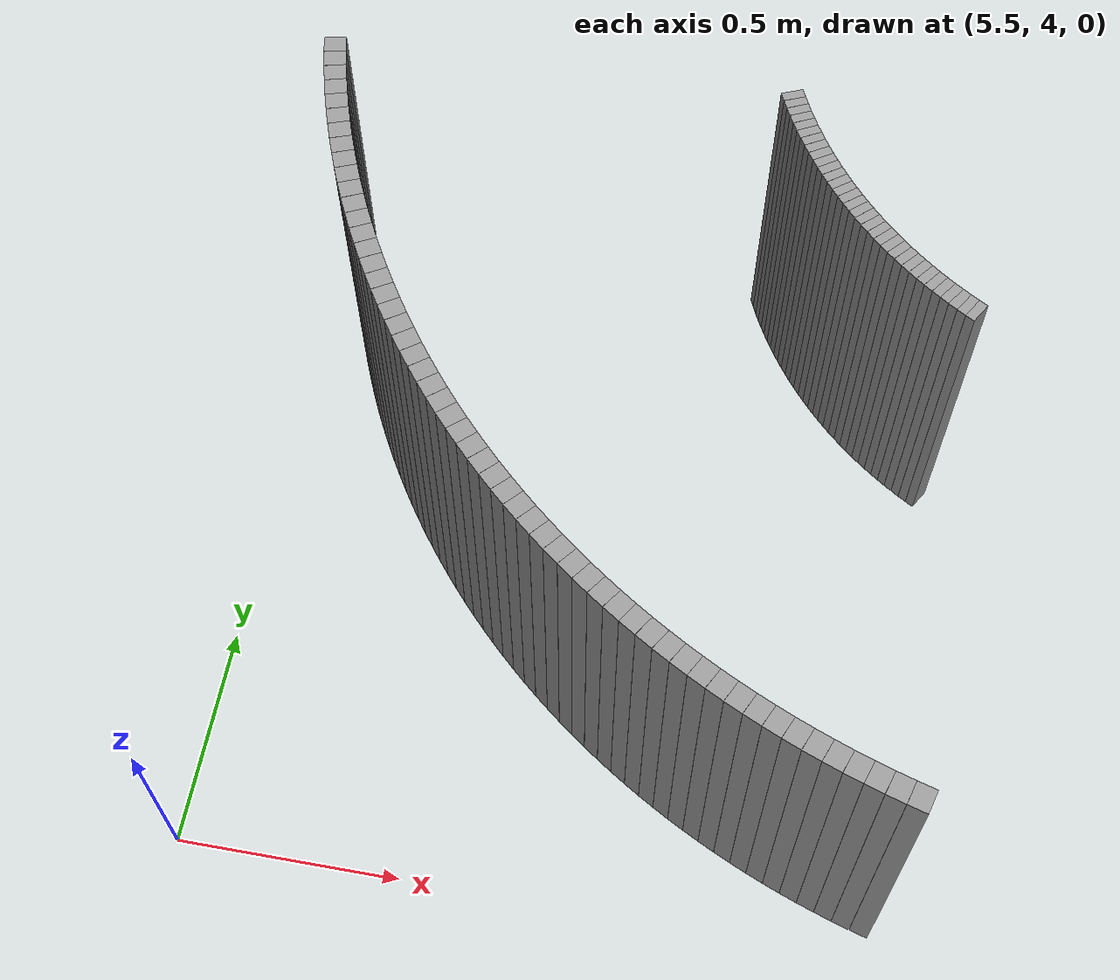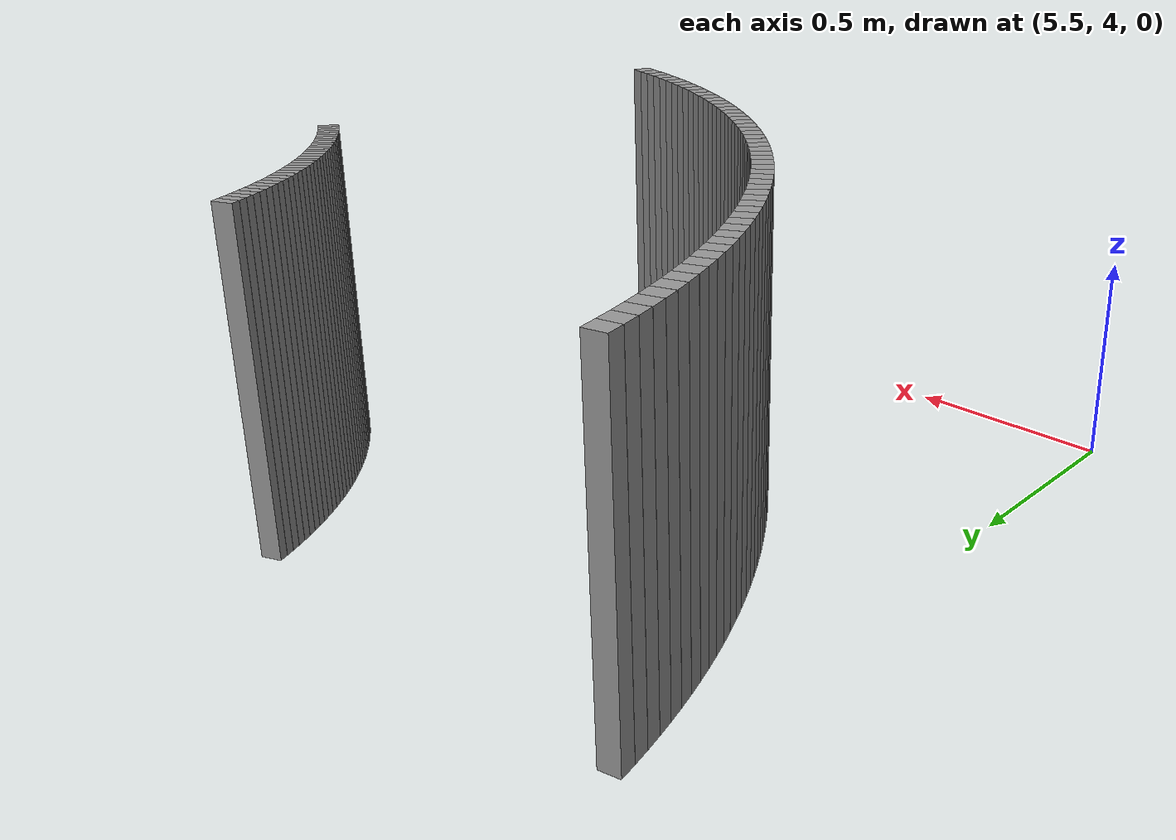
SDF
<sdf version="1.6">
 <model name="path_walls">
  <static>true</static>
  <model name="wall_left_374">
   <static>true</static>
   <pose>6.584013524048298 5.658781898348471 0.40 0 0 -1.1731263706443242</pose>
   <link name="wall_link">
    <visual name="wall_visual">
     <geometry><box><size>0.02137440799885274 0.05 0.8</size></box></geometry>
     <material><ambient>0.3 0.3 0.3 1</ambient><diffuse>0.6 0.6 0.6 1</diffuse></material>
    </visual>
    <collision name="wall_collision">
     <geometry><box><size>0.02137440799885274 0.05 0.8</size></box></geometry>
    </collision>
   </link>
  </model>
  <model name="wall_left_375">
   <static>true</static>
   <pose>6.592486301925344 5.639159661013978 0.40 0 0 -1.153242872836709</pose>
   <link name="wall_link">
    <visual name="wall_visual">
     <geometry><box><size>0.021374407998836515 0.05 0.8</size></box></geometry>
     <material><ambient>0.3 0.3 0.3 1</ambient><diffuse>0.6 0.6 0.6 1</diffuse></material>
    </visual>
    <collision name="wall_collision">
     <geometry><box><size>0.021374407998836515 0.05 0.8</size></box></geometry>
    </collision>
   </link>
  </model>
  <model name="wall_left_376">
   <static>true</static>
   <pose>6.601347537991533 5.61970975977145 0.40 0 0 -1.1333593750292177</pose>
   <link name="wall_link">
    <visual name="wall_visual">
     <geometry><box><size>0.021374407998847888 0.05 0.8</size></box></geometry>
     <material><ambient>0.3 0.3 0.3 1</ambient><diffuse>0.6 0.6 0.6 1</diffuse></material>
    </visual>
    <collision name="wall_collision">
     <geometry><box><size>0.021374407998847888 0.05 0.8</size></box></geometry>
    </collision>
   </link>
  </model>
  <model name="wall_left_377">
   <static>true</static>
   <pose>6.610593729041724 5.60043988395378 0.40 0 0 -1.1134758772217077</pose>
   <link name="wall_link">
    <visual name="wall_visual">
     <geometry><box><size>0.02137440799884737 0.05 0.8</size></box></geometry>
     <material><ambient>0.3 0.3 0.3 1</ambient><diffuse>0.6 0.6 0.6 1</diffuse></material>
    </visual>
    <collision name="wall_collision">
     <geometry><box><size>0.02137440799884737 0.05 0.8</size></box></geometry>
    </collision>
   </link>
  </model>
  <model name="wall_left_378">
   <static>true</static>
   <pose>6.620221219682493 5.581357651722539 0.40 0 0 -1.093592379414218</pose>
   <link name="wall_link">
    <visual name="wall_visual">
     <geometry><box><size>0.021374407998852027 0.05 0.8</size></box></geometry>
     <material><ambient>0.3 0.3 0.3 1</ambient><diffuse>0.6 0.6 0.6 1</diffuse></material>
    </visual>
    <collision name="wall_collision">
     <geometry><box><size>0.021374407998852027 0.05 0.8</size></box></geometry>
    </collision>
   </link>
  </model>
  <model name="wall_left_379">
   <static>true</static>
   <pose>6.630226203777265 5.562470607056193 0.40 0 0 -1.0737088816065785</pose>
   <link name="wall_link">
    <visual name="wall_visual">
     <geometry><box><size>0.0213744079988493 0.05 0.8</size></box></geometry>
     <material><ambient>0.3 0.3 0.3 1</ambient><diffuse>0.6 0.6 0.6 1</diffuse></material>
    </visual>
    <collision name="wall_collision">
     <geometry><box><size>0.0213744079988493 0.05 0.8</size></box></geometry>
    </collision>
   </link>
  </model>
  <model name="wall_left_380">
   <static>true</static>
   <pose>6.640604725951022 5.543786216767673 0.40 0 0 -1.0538253837991243</pose>
   <link name="wall_link">
    <visual name="wall_visual">
     <geometry><box><size>0.02137440799883933 0.05 0.8</size></box></geometry>
     <material><ambient>0.3 0.3 0.3 1</ambient><diffuse>0.6 0.6 0.6 1</diffuse></material>
    </visual>
    <collision name="wall_collision">
     <geometry><box><size>0.02137440799883933 0.05 0.8</size></box></geometry>
    </collision>
   </link>
  </model>
  <model name="wall_left_381">
   <static>true</static>
   <pose>6.651352683154039 5.52531186755242 0.40 0 0 -1.033941885991578</pose>
   <link name="wall_link">
    <visual name="wall_visual">
     <geometry><box><size>0.021374407998854834 0.05 0.8</size></box></geometry>
     <material><ambient>0.3 0.3 0.3 1</ambient><diffuse>0.6 0.6 0.6 1</diffuse></material>
    </visual>
    <collision name="wall_collision">
     <geometry><box><size>0.021374407998854834 0.05 0.8</size></box></geometry>
    </collision>
   </link>
  </model>
  <model name="wall_left_382">
   <static>true</static>
   <pose>6.662465826283972 5.507054863068153 0.40 0 0 -1.0140583881840293</pose>
   <link name="wall_link">
    <visual name="wall_visual">
     <geometry><box><size>0.0213744079988352 0.05 0.8</size></box></geometry>
     <material><ambient>0.3 0.3 0.3 1</ambient><diffuse>0.6 0.6 0.6 1</diffuse></material>
    </visual>
    <collision name="wall_collision">
     <geometry><box><size>0.0213744079988352 0.05 0.8</size></box></geometry>
    </collision>
   </link>
  </model>
  <model name="wall_left_383">
   <static>true</static>
   <pose>6.6739397618657055 5.489022421047419 0.40 0 0 -0.9941748903765355</pose>
   <link name="wall_link">
    <visual name="wall_visual">
     <geometry><box><size>0.021374407998852724 0.05 0.8</size></box></geometry>
     <material><ambient>0.3 0.3 0.3 1</ambient><diffuse>0.6 0.6 0.6 1</diffuse></material>
    </visual>
    <collision name="wall_collision">
     <geometry><box><size>0.021374407998852724 0.05 0.8</size></box></geometry>
    </collision>
   </link>
  </model>
  <model name="wall_left_384">
   <static>true</static>
   <pose>6.685769953788271 5.471221670444134 0.40 0 0 -0.974291392569001</pose>
   <link name="wall_link">
    <visual name="wall_visual">
     <geometry><box><size>0.021374407998845414 0.05 0.8</size></box></geometry>
     <material><ambient>0.3 0.3 0.3 1</ambient><diffuse>0.6 0.6 0.6 1</diffuse></material>
    </visual>
    <collision name="wall_collision">
     <geometry><box><size>0.021374407998845414 0.05 0.8</size></box></geometry>
    </collision>
   </link>
  </model>
  <model name="wall_left_385">
   <static>true</static>
   <pose>6.69795172509815 5.453659648615236 0.40 0 0 -0.954407894761421</pose>
   <link name="wall_link">
    <visual name="wall_visual">
     <geometry><box><size>0.02137440799884164 0.05 0.8</size></box></geometry>
     <material><ambient>0.3 0.3 0.3 1</ambient><diffuse>0.6 0.6 0.6 1</diffuse></material>
    </visual>
    <collision name="wall_collision">
     <geometry><box><size>0.02137440799884164 0.05 0.8</size></box></geometry>
    </collision>
   </link>
  </model>
  <model name="wall_left_386">
   <static>true</static>
   <pose>6.710480259848279 5.436343298538502 0.40 0 0 -0.9345243969539239</pose>
   <link name="wall_link">
    <visual name="wall_visual">
     <geometry><box><size>0.021374407998861096 0.05 0.8</size></box></geometry>
     <material><ambient>0.3 0.3 0.3 1</ambient><diffuse>0.6 0.6 0.6 1</diffuse></material>
    </visual>
    <collision name="wall_collision">
     <geometry><box><size>0.021374407998861096 0.05 0.8</size></box></geometry>
    </collision>
   </link>
  </model>
  <model name="wall_left_387">
   <static>true</static>
   <pose>6.723350605001961 5.41927946606774 0.40 0 0 -0.9146408991464429</pose>
   <link name="wall_link">
    <visual name="wall_visual">
     <geometry><box><size>0.021374407998839256 0.05 0.8</size></box></geometry>
     <material><ambient>0.3 0.3 0.3 1</ambient><diffuse>0.6 0.6 0.6 1</diffuse></material>
    </visual>
    <collision name="wall_collision">
     <geometry><box><size>0.021374407998839256 0.05 0.8</size></box></geometry>
    </collision>
   </link>
  </model>
  <model name="wall_left_388">
   <static>true</static>
   <pose>6.736557672391022 5.402474897226332 0.40 0 0 -0.8947574013388512</pose>
   <link name="wall_link">
    <visual name="wall_visual">
     <geometry><box><size>0.021374407998845404 0.05 0.8</size></box></geometry>
     <material><ambient>0.3 0.3 0.3 1</ambient><diffuse>0.6 0.6 0.6 1</diffuse></material>
    </visual>
    <collision name="wall_collision">
     <geometry><box><size>0.021374407998845404 0.05 0.8</size></box></geometry>
    </collision>
   </link>
  </model>
  <model name="wall_left_389">
   <static>true</static>
   <pose>6.750096240727374 5.385936235540241 0.40 0 0 -0.8748739035313212</pose>
   <link name="wall_link">
    <visual name="wall_visual">
     <geometry><box><size>0.02137440799884972 0.05 0.8</size></box></geometry>
     <material><ambient>0.3 0.3 0.3 1</ambient><diffuse>0.6 0.6 0.6 1</diffuse></material>
    </visual>
    <collision name="wall_collision">
     <geometry><box><size>0.02137440799884972 0.05 0.8</size></box></geometry>
    </collision>
   </link>
  </model>
  <model name="wall_left_390">
   <static>true</static>
   <pose>6.763960957667182 5.369670019411588 0.40 0 0 -0.8549904057238426</pose>
   <link name="wall_link">
    <visual name="wall_visual">
     <geometry><box><size>0.0213744079988471 0.05 0.8</size></box></geometry>
     <material><ambient>0.3 0.3 0.3 1</ambient><diffuse>0.6 0.6 0.6 1</diffuse></material>
    </visual>
    <collision name="wall_collision">
     <geometry><box><size>0.0213744079988471 0.05 0.8</size></box></geometry>
    </collision>
   </link>
  </model>
  <model name="wall_left_391">
   <static>true</static>
   <pose>6.77814634192687 5.353682679533742 0.40 0 0 -0.8351069079162586</pose>
   <link name="wall_link">
    <visual name="wall_visual">
     <geometry><box><size>0.02137440799883505 0.05 0.8</size></box></geometry>
     <material><ambient>0.3 0.3 0.3 1</ambient><diffuse>0.6 0.6 0.6 1</diffuse></material>
    </visual>
    <collision name="wall_collision">
     <geometry><box><size>0.02137440799883505 0.05 0.8</size></box></geometry>
    </collision>
   </link>
  </model>
  <model name="wall_left_392">
   <static>true</static>
   <pose>6.79264678545011 5.337980536348997 0.40 0 0 -0.8152234101087368</pose>
   <link name="wall_link">
    <visual name="wall_visual">
     <geometry><box><size>0.02137440799885385 0.05 0.8</size></box></geometry>
     <material><ambient>0.3 0.3 0.3 1</ambient><diffuse>0.6 0.6 0.6 1</diffuse></material>
    </visual>
    <collision name="wall_collision">
     <geometry><box><size>0.02137440799885385 0.05 0.8</size></box></geometry>
    </collision>
   </link>
  </model>
  <model name="wall_left_393">
   <static>true</static>
   <pose>6.807456555624892 5.322569797549856 0.40 0 0 -0.7953399123011984</pose>
   <link name="wall_link">
    <visual name="wall_visual">
     <geometry><box><size>0.02137440799884804 0.05 0.8</size></box></geometry>
     <material><ambient>0.3 0.3 0.3 1</ambient><diffuse>0.6 0.6 0.6 1</diffuse></material>
    </visual>
    <collision name="wall_collision">
     <geometry><box><size>0.02137440799884804 0.05 0.8</size></box></geometry>
    </collision>
   </link>
  </model>
  <model name="wall_left_394">
   <static>true</static>
   <pose>6.822569797549857 5.307456555624891 0.40 0 0 -0.7754564144936977</pose>
   <link name="wall_link">
    <visual name="wall_visual">
     <geometry><box><size>0.021374407998846785 0.05 0.8</size></box></geometry>
     <material><ambient>0.3 0.3 0.3 1</ambient><diffuse>0.6 0.6 0.6 1</diffuse></material>
    </visual>
    <collision name="wall_collision">
     <geometry><box><size>0.021374407998846785 0.05 0.8</size></box></geometry>
    </collision>
   </link>
  </model>
  <model name="wall_left_395">
   <static>true</static>
   <pose>6.837980536348997 5.29264678545011 0.40 0 0 -0.7555729166861598</pose>
   <link name="wall_link">
    <visual name="wall_visual">
     <geometry><box><size>0.02137440799885385 0.05 0.8</size></box></geometry>
     <material><ambient>0.3 0.3 0.3 1</ambient><diffuse>0.6 0.6 0.6 1</diffuse></material>
    </visual>
    <collision name="wall_collision">
     <geometry><box><size>0.02137440799885385 0.05 0.8</size></box></geometry>
    </collision>
   </link>
  </model>
  <model name="wall_left_396">
   <static>true</static>
   <pose>6.853682679533742 5.27814634192687 0.40 0 0 -0.735689418878638</pose>
   <link name="wall_link">
    <visual name="wall_visual">
     <geometry><box><size>0.02137440799883505 0.05 0.8</size></box></geometry>
     <material><ambient>0.3 0.3 0.3 1</ambient><diffuse>0.6 0.6 0.6 1</diffuse></material>
    </visual>
    <collision name="wall_collision">
     <geometry><box><size>0.02137440799883505 0.05 0.8</size></box></geometry>
    </collision>
   </link>
  </model>
  <model name="wall_left_397">
   <static>true</static>
   <pose>6.869670019411588 5.263960957667182 0.40 0 0 -0.7158059210710622</pose>
   <link name="wall_link">
    <visual name="wall_visual">
     <geometry><box><size>0.02137440799884961 0.05 0.8</size></box></geometry>
     <material><ambient>0.3 0.3 0.3 1</ambient><diffuse>0.6 0.6 0.6 1</diffuse></material>
    </visual>
    <collision name="wall_collision">
     <geometry><box><size>0.02137440799884961 0.05 0.8</size></box></geometry>
    </collision>
   </link>
  </model>
  <model name="wall_left_398">
   <static>true</static>
   <pose>6.8859362355402425 5.250096240727373 0.40 0 0 -0.6959224232635968</pose>
   <link name="wall_link">
    <visual name="wall_visual">
     <geometry><box><size>0.021374407998847787 0.05 0.8</size></box></geometry>
     <material><ambient>0.3 0.3 0.3 1</ambient><diffuse>0.6 0.6 0.6 1</diffuse></material>
    </visual>
    <collision name="wall_collision">
     <geometry><box><size>0.021374407998847787 0.05 0.8</size></box></geometry>
    </collision>
   </link>
  </model>
  <model name="wall_left_399">
   <static>true</static>
   <pose>6.90247489722633 5.236557672391022 0.40 0 0 -0.6760389254560002</pose>
   <link name="wall_link">
    <visual name="wall_visual">
     <geometry><box><size>0.021374407998842347 0.05 0.8</size></box></geometry>
     <material><ambient>0.3 0.3 0.3 1</ambient><diffuse>0.6 0.6 0.6 1</diffuse></material>
    </visual>
    <collision name="wall_collision">
     <geometry><box><size>0.021374407998842347 0.05 0.8</size></box></geometry>
    </collision>
   </link>
  </model>
  <model name="wall_left_400">
   <static>true</static>
   <pose>6.919279466067744 5.223350605001958 0.40 0 0 -0.6561554276485118</pose>
   <link name="wall_link">
    <visual name="wall_visual">
     <geometry><box><size>0.021374407998853658 0.05 0.8</size></box></geometry>
     <material><ambient>0.3 0.3 0.3 1</ambient><diffuse>0.6 0.6 0.6 1</diffuse></material>
    </visual>
    <collision name="wall_collision">
     <geometry><box><size>0.021374407998853658 0.05 0.8</size></box></geometry>
    </collision>
   </link>
  </model>
  <model name="wall_left_401">
   <static>true</static>
   <pose>6.936343298538507 5.210480259848275 0.40 0 0 -0.636271929840919</pose>
   <link name="wall_link">
    <visual name="wall_visual">
     <geometry><box><size>0.0213744079988492 0.05 0.8</size></box></geometry>
     <material><ambient>0.3 0.3 0.3 1</ambient><diffuse>0.6 0.6 0.6 1</diffuse></material>
    </visual>
    <collision name="wall_collision">
     <geometry><box><size>0.0213744079988492 0.05 0.8</size></box></geometry>
    </collision>
   </link>
  </model>
  <model name="wall_left_402">
   <static>true</static>
   <pose>6.953659648615233 5.197951725098153 0.40 0 0 -0.6163884320334982</pose>
   <link name="wall_link">
    <visual name="wall_visual">
     <geometry><box><size>0.021374407998833278 0.05 0.8</size></box></geometry>
     <material><ambient>0.3 0.3 0.3 1</ambient><diffuse>0.6 0.6 0.6 1</diffuse></material>
    </visual>
    <collision name="wall_collision">
     <geometry><box><size>0.021374407998833278 0.05 0.8</size></box></geometry>
    </collision>
   </link>
  </model>
  <model name="wall_left_403">
   <static>true</static>
   <pose>6.9712216704441285 5.185769953788274 0.40 0 0 -0.5965049342259398</pose>
   <link name="wall_link">
    <visual name="wall_visual">
     <geometry><box><size>0.021374407998850348 0.05 0.8</size></box></geometry>
     <material><ambient>0.3 0.3 0.3 1</ambient><diffuse>0.6 0.6 0.6 1</diffuse></material>
    </visual>
    <collision name="wall_collision">
     <geometry><box><size>0.021374407998850348 0.05 0.8</size></box></geometry>
    </collision>
   </link>
  </model>
  <model name="wall_left_404">
   <static>true</static>
   <pose>6.989022421047417 5.1739397618657055 0.40 0 0 -0.576621436418328</pose>
   <link name="wall_link">
    <visual name="wall_visual">
     <geometry><box><size>0.02137440799885544 0.05 0.8</size></box></geometry>
     <material><ambient>0.3 0.3 0.3 1</ambient><diffuse>0.6 0.6 0.6 1</diffuse></material>
    </visual>
    <collision name="wall_collision">
     <geometry><box><size>0.02137440799885544 0.05 0.8</size></box></geometry>
    </collision>
   </link>
  </model>
  <model name="wall_left_405">
   <static>true</static>
   <pose>7.007054863068152 5.162465826283972 0.40 0 0 -0.5567379386108453</pose>
   <link name="wall_link">
    <visual name="wall_visual">
     <geometry><box><size>0.021374407998835956 0.05 0.8</size></box></geometry>
     <material><ambient>0.3 0.3 0.3 1</ambient><diffuse>0.6 0.6 0.6 1</diffuse></material>
    </visual>
    <collision name="wall_collision">
     <geometry><box><size>0.021374407998835956 0.05 0.8</size></box></geometry>
    </collision>
   </link>
  </model>
  <model name="wall_left_406">
   <static>true</static>
   <pose>7.025311867552423 5.1513526831540375 0.40 0 0 -0.536854440803355</pose>
   <link name="wall_link">
    <visual name="wall_visual">
     <geometry><box><size>0.021374407998860465 0.05 0.8</size></box></geometry>
     <material><ambient>0.3 0.3 0.3 1</ambient><diffuse>0.6 0.6 0.6 1</diffuse></material>
    </visual>
    <collision name="wall_collision">
     <geometry><box><size>0.021374407998860465 0.05 0.8</size></box></geometry>
    </collision>
   </link>
  </model>
  <model name="wall_right_365">
   <static>true</static>
   <pose>5.549612086947805 5.624869059963652 0.40 0 0 -1.3520778509120803</pose>
   <link name="wall_link">
    <visual name="wall_visual">
     <geometry><box><size>0.041257578265902574 0.05 0.8</size></box></geometry>
     <material><ambient>0.3 0.3 0.3 1</ambient><diffuse>0.6 0.6 0.6 1</diffuse></material>
    </visual>
    <collision name="wall_collision">
     <geometry><box><size>0.041257578265902574 0.05 0.8</size></box></geometry>
    </collision>
   </link>
  </model>
  <model name="wall_right_366">
   <static>true</static>
   <pose>5.558963596611791 5.584687362694266 0.40 0 0 -1.3321943531045355</pose>
   <link name="wall_link">
    <visual name="wall_visual">
     <geometry><box><size>0.0412575782659131 0.05 0.8</size></box></geometry>
     <material><ambient>0.3 0.3 0.3 1</ambient><diffuse>0.6 0.6 0.6 1</diffuse></material>
    </visual>
    <collision name="wall_collision">
     <geometry><box><size>0.0412575782659131 0.05 0.8</size></box></geometry>
    </collision>
   </link>
  </model>
  <model name="wall_right_367">
   <static>true</static>
   <pose>5.569112157806522 5.544699536620312 0.40 0 0 -1.3123108552970117</pose>
   <link name="wall_link">
    <visual name="wall_visual">
     <geometry><box><size>0.04125757826590173 0.05 0.8</size></box></geometry>
     <material><ambient>0.3 0.3 0.3 1</ambient><diffuse>0.6 0.6 0.6 1</diffuse></material>
    </visual>
    <collision name="wall_collision">
     <geometry><box><size>0.04125757826590173 0.05 0.8</size></box></geometry>
    </collision>
   </link>
  </model>
  <model name="wall_right_368">
   <static>true</static>
   <pose>5.580053758395151 5.504921390547338 0.40 0 0 -1.2924273574894403</pose>
   <link name="wall_link">
    <visual name="wall_visual">
     <geometry><box><size>0.04125757826590933 0.05 0.8</size></box></geometry>
     <material><ambient>0.3 0.3 0.3 1</ambient><diffuse>0.6 0.6 0.6 1</diffuse></material>
    </visual>
    <collision name="wall_collision">
     <geometry><box><size>0.04125757826590933 0.05 0.8</size></box></geometry>
    </collision>
   </link>
  </model>
  <model name="wall_right_369">
   <static>true</static>
   <pose>5.591784072720264 5.465368650385905 0.40 0 0 -1.2725438596819638</pose>
   <link name="wall_link">
    <visual name="wall_visual">
     <geometry><box><size>0.04125757826589796 0.05 0.8</size></box></geometry>
     <material><ambient>0.3 0.3 0.3 1</ambient><diffuse>0.6 0.6 0.6 1</diffuse></material>
    </visual>
    <collision name="wall_collision">
     <geometry><box><size>0.04125757826589796 0.05 0.8</size></box></geometry>
    </collision>
   </link>
  </model>
  <model name="wall_right_370">
   <static>true</static>
   <pose>5.604298463314006 5.426056952934495 0.40 0 0 -1.2526603618744294</pose>
   <link name="wall_link">
    <visual name="wall_visual">
     <geometry><box><size>0.04125757826591362 0.05 0.8</size></box></geometry>
     <material><ambient>0.3 0.3 0.3 1</ambient><diffuse>0.6 0.6 0.6 1</diffuse></material>
    </visual>
    <collision name="wall_collision">
     <geometry><box><size>0.04125757826591362 0.05 0.8</size></box></geometry>
    </collision>
   </link>
  </model>
  <model name="wall_right_371">
   <static>true</static>
   <pose>5.617591982731444 5.387001839697652 0.40 0 0 -1.2327768640668768</pose>
   <link name="wall_link">
    <visual name="wall_visual">
     <geometry><box><size>0.04125757826590976 0.05 0.8</size></box></geometry>
     <material><ambient>0.3 0.3 0.3 1</ambient><diffuse>0.6 0.6 0.6 1</diffuse></material>
    </visual>
    <collision name="wall_collision">
     <geometry><box><size>0.04125757826590976 0.05 0.8</size></box></geometry>
    </collision>
   </link>
  </model>
  <model name="wall_right_372">
   <static>true</static>
   <pose>5.631659375506498 5.348218750741813 0.40 0 0 -1.2128933662593353</pose>
   <link name="wall_link">
    <visual name="wall_visual">
     <geometry><box><size>0.04125757826590523 0.05 0.8</size></box></geometry>
     <material><ambient>0.3 0.3 0.3 1</ambient><diffuse>0.6 0.6 0.6 1</diffuse></material>
    </visual>
    <collision name="wall_collision">
     <geometry><box><size>0.04125757826590523 0.05 0.8</size></box></geometry>
    </collision>
   </link>
  </model>
  <model name="wall_right_373">
   <static>true</static>
   <pose>5.646495080229637 5.309723018591201 0.40 0 0 -1.1930098684518096</pose>
   <link name="wall_link">
    <visual name="wall_visual">
     <geometry><box><size>0.041257578265902345 0.05 0.8</size></box></geometry>
     <material><ambient>0.3 0.3 0.3 1</ambient><diffuse>0.6 0.6 0.6 1</diffuse></material>
    </visual>
    <collision name="wall_collision">
     <geometry><box><size>0.041257578265902345 0.05 0.8</size></box></geometry>
    </collision>
   </link>
  </model>
  <model name="wall_right_374">
   <static>true</static>
   <pose>5.662093231746534 5.2715298621662665 0.40 0 0 -1.1731263706443051</pose>
   <link name="wall_link">
    <visual name="wall_visual">
     <geometry><box><size>0.041257578265900895 0.05 0.8</size></box></geometry>
     <material><ambient>0.3 0.3 0.3 1</ambient><diffuse>0.6 0.6 0.6 1</diffuse></material>
    </visual>
    <collision name="wall_collision">
     <geometry><box><size>0.041257578265900895 0.05 0.8</size></box></geometry>
    </collision>
   </link>
  </model>
  <model name="wall_right_375">
   <static>true</static>
   <pose>5.678447663476797 5.2336543807670255 0.40 0 0 -1.1532428728367563</pose>
   <link name="wall_link">
    <visual name="wall_visual">
     <geometry><box><size>0.04125757826591561 0.05 0.8</size></box></geometry>
     <material><ambient>0.3 0.3 0.3 1</ambient><diffuse>0.6 0.6 0.6 1</diffuse></material>
    </visual>
    <collision name="wall_collision">
     <geometry><box><size>0.04125757826591561 0.05 0.8</size></box></geometry>
    </collision>
   </link>
  </model>
  <model name="wall_right_376">
   <static>true</static>
   <pose>5.695551909851867 5.196111548103717 0.40 0 0 -1.1333593750291846</pose>
   <link name="wall_link">
    <visual name="wall_visual">
     <geometry><box><size>0.04125757826590216 0.05 0.8</size></box></geometry>
     <material><ambient>0.3 0.3 0.3 1</ambient><diffuse>0.6 0.6 0.6 1</diffuse></material>
    </visual>
    <collision name="wall_collision">
     <geometry><box><size>0.04125757826590216 0.05 0.8</size></box></geometry>
    </collision>
   </link>
  </model>
  <model name="wall_right_377">
   <static>true</static>
   <pose>5.7133992088711105 5.158916206377078 0.40 0 0 -1.1134758772217235</pose>
   <link name="wall_link">
    <visual name="wall_visual">
     <geometry><box><size>0.041257578265905814 0.05 0.8</size></box></geometry>
     <material><ambient>0.3 0.3 0.3 1</ambient><diffuse>0.6 0.6 0.6 1</diffuse></material>
    </visual>
    <collision name="wall_collision">
     <geometry><box><size>0.041257578265905814 0.05 0.8</size></box></geometry>
    </collision>
   </link>
  </model>
  <model name="wall_right_378">
   <static>true</static>
   <pose>5.731982504775127 5.1220830604106045 0.40 0 0 -1.0935923794141709</pose>
   <link name="wall_link">
    <visual name="wall_visual">
     <geometry><box><size>0.0412575782659014 0.05 0.8</size></box></geometry>
     <material><ambient>0.3 0.3 0.3 1</ambient><diffuse>0.6 0.6 0.6 1</diffuse></material>
    </visual>
    <collision name="wall_collision">
     <geometry><box><size>0.0412575782659014 0.05 0.8</size></box></geometry>
    </collision>
   </link>
  </model>
  <model name="wall_right_379">
   <static>true</static>
   <pose>5.751294450835171 5.085626671837163 0.40 0 0 -1.0737088816066405</pose>
   <link name="wall_link">
    <visual name="wall_visual">
     <geometry><box><size>0.04125757826590541 0.05 0.8</size></box></geometry>
     <material><ambient>0.3 0.3 0.3 1</ambient><diffuse>0.6 0.6 0.6 1</diffuse></material>
    </visual>
    <collision name="wall_collision">
     <geometry><box><size>0.04125757826590541 0.05 0.8</size></box></geometry>
    </collision>
   </link>
  </model>
  <model name="wall_right_380">
   <static>true</static>
   <pose>5.771327412257607 5.049561453342173 0.40 0 0 -1.053825383799091</pose>
   <link name="wall_link">
    <visual name="wall_visual">
     <geometry><box><size>0.0412575782659121 0.05 0.8</size></box></geometry>
     <material><ambient>0.3 0.3 0.3 1</ambient><diffuse>0.6 0.6 0.6 1</diffuse></material>
    </visual>
    <collision name="wall_collision">
     <geometry><box><size>0.0412575782659121 0.05 0.8</size></box></geometry>
    </collision>
   </link>
  </model>
  <model name="wall_right_381">
   <static>true</static>
   <pose>5.792073469202249 5.013901662965707 0.40 0 0 -1.03394188599159</pose>
   <link name="wall_link">
    <visual name="wall_visual">
     <geometry><box><size>0.04125757826589606 0.05 0.8</size></box></geometry>
     <material><ambient>0.3 0.3 0.3 1</ambient><diffuse>0.6 0.6 0.6 1</diffuse></material>
    </visual>
    <collision name="wall_collision">
     <geometry><box><size>0.04125757826589606 0.05 0.8</size></box></geometry>
    </collision>
   </link>
  </model>
  <model name="wall_right_382">
   <static>true</static>
   <pose>5.813524419913406 4.978661398465685 0.40 0 0 -1.0140583881840584</pose>
   <link name="wall_link">
    <visual name="wall_visual">
     <geometry><box><size>0.04125757826591776 0.05 0.8</size></box></geometry>
     <material><ambient>0.3 0.3 0.3 1</ambient><diffuse>0.6 0.6 0.6 1</diffuse></material>
    </visual>
    <collision name="wall_collision">
     <geometry><box><size>0.04125757826591776 0.05 0.8</size></box></geometry>
    </collision>
   </link>
  </model>
  <model name="wall_right_383">
   <static>true</static>
   <pose>5.835671783962363 4.943854591744481 0.40 0 0 -0.9941748903765114</pose>
   <link name="wall_link">
    <visual name="wall_visual">
     <geometry><box><size>0.041257578265901027 0.05 0.8</size></box></geometry>
     <material><ambient>0.3 0.3 0.3 1</ambient><diffuse>0.6 0.6 0.6 1</diffuse></material>
    </visual>
    <collision name="wall_collision">
     <geometry><box><size>0.041257578265901027 0.05 0.8</size></box></geometry>
    </collision>
   </link>
  </model>
  <model name="wall_right_384">
   <static>true</static>
   <pose>5.858506805600026 4.909495003341078 0.40 0 0 -0.9742913925689963</pose>
   <link name="wall_link">
    <visual name="wall_visual">
     <geometry><box><size>0.04125757826590654 0.05 0.8</size></box></geometry>
     <material><ambient>0.3 0.3 0.3 1</ambient><diffuse>0.6 0.6 0.6 1</diffuse></material>
    </visual>
    <collision name="wall_collision">
     <geometry><box><size>0.04125757826590654 0.05 0.8</size></box></geometry>
    </collision>
   </link>
  </model>
  <model name="wall_right_385">
   <static>true</static>
   <pose>5.882020457218445 4.875596216990948 0.40 0 0 -0.9544078947614469</pose>
   <link name="wall_link">
    <visual name="wall_visual">
     <geometry><box><size>0.04125757826591076 0.05 0.8</size></box></geometry>
     <material><ambient>0.3 0.3 0.3 1</ambient><diffuse>0.6 0.6 0.6 1</diffuse></material>
    </visual>
    <collision name="wall_collision">
     <geometry><box><size>0.04125757826591076 0.05 0.8</size></box></geometry>
    </collision>
   </link>
  </model>
  <model name="wall_right_386">
   <static>true</static>
   <pose>5.906203442919769 4.842171634255883 0.40 0 0 -0.9345243969539138</pose>
   <link name="wall_link">
    <visual name="wall_visual">
     <geometry><box><size>0.04125757826589256 0.05 0.8</size></box></geometry>
     <material><ambient>0.3 0.3 0.3 1</ambient><diffuse>0.6 0.6 0.6 1</diffuse></material>
    </visual>
    <collision name="wall_collision">
     <geometry><box><size>0.04125757826589256 0.05 0.8</size></box></geometry>
    </collision>
   </link>
  </model>
  <model name="wall_right_387">
   <static>true</static>
   <pose>5.931046202191315 4.809234469225787 0.40 0 0 -0.9146408991464196</pose>
   <link name="wall_link">
    <visual name="wall_visual">
     <geometry><box><size>0.04125757826591295 0.05 0.8</size></box></geometry>
     <material><ambient>0.3 0.3 0.3 1</ambient><diffuse>0.6 0.6 0.6 1</diffuse></material>
    </visual>
    <collision name="wall_collision">
     <geometry><box><size>0.04125757826591295 0.05 0.8</size></box></geometry>
    </collision>
   </link>
  </model>
  <model name="wall_right_388">
   <static>true</static>
   <pose>5.956538913685211 4.776797743294626 0.40 0 0 -0.8947574013388263</pose>
   <link name="wall_link">
    <visual name="wall_visual">
     <geometry><box><size>0.041257578265907646 0.05 0.8</size></box></geometry>
     <material><ambient>0.3 0.3 0.3 1</ambient><diffuse>0.6 0.6 0.6 1</diffuse></material>
    </visual>
    <collision name="wall_collision">
     <geometry><box><size>0.041257578265907646 0.05 0.8</size></box></geometry>
    </collision>
   </link>
  </model>
  <model name="wall_right_389">
   <static>true</static>
   <pose>5.9826714991011665 4.7448742800125565 0.40 0 0 -0.8748739035313458</pose>
   <link name="wall_link">
    <visual name="wall_visual">
     <geometry><box><size>0.04125757826590197 0.05 0.8</size></box></geometry>
     <material><ambient>0.3 0.3 0.3 1</ambient><diffuse>0.6 0.6 0.6 1</diffuse></material>
    </visual>
    <collision name="wall_collision">
     <geometry><box><size>0.04125757826590197 0.05 0.8</size></box></geometry>
    </collision>
   </link>
  </model>
  <model name="wall_right_390">
   <static>true</static>
   <pose>6.009433627170845 4.713476700016226 0.40 0 0 -0.854990405723842</pose>
   <link name="wall_link">
    <visual name="wall_visual">
     <geometry><box><size>0.04125757826590414 0.05 0.8</size></box></geometry>
     <material><ambient>0.3 0.3 0.3 1</ambient><diffuse>0.6 0.6 0.6 1</diffuse></material>
    </visual>
    <collision name="wall_collision">
     <geometry><box><size>0.04125757826590414 0.05 0.8</size></box></geometry>
    </collision>
   </link>
  </model>
  <model name="wall_right_391">
   <static>true</static>
   <pose>6.036814717742235 4.6826174160393474 0.40 0 0 -0.8351069079162469</pose>
   <link name="wall_link">
    <visual name="wall_visual">
     <geometry><box><size>0.04125757826591751 0.05 0.8</size></box></geometry>
     <material><ambient>0.3 0.3 0.3 1</ambient><diffuse>0.6 0.6 0.6 1</diffuse></material>
    </visual>
    <collision name="wall_collision">
     <geometry><box><size>0.04125757826591751 0.05 0.8</size></box></geometry>
    </collision>
   </link>
  </model>
  <model name="wall_right_392">
   <static>true</static>
   <pose>6.064803945962394 4.652308628005443 0.40 0 0 -0.8152234101087479</pose>
   <link name="wall_link">
    <visual name="wall_visual">
     <geometry><box><size>0.041257578265901866 0.05 0.8</size></box></geometry>
     <material><ambient>0.3 0.3 0.3 1</ambient><diffuse>0.6 0.6 0.6 1</diffuse></material>
    </visual>
    <collision name="wall_collision">
     <geometry><box><size>0.041257578265901866 0.05 0.8</size></box></geometry>
    </collision>
   </link>
  </model>
  <model name="wall_right_393">
   <static>true</static>
   <pose>6.093390246556961 4.622562318204717 0.40 0 0 -0.7953399123012199</pose>
   <link name="wall_link">
    <visual name="wall_visual">
     <geometry><box><size>0.041257578265903816 0.05 0.8</size></box></geometry>
     <material><ambient>0.3 0.3 0.3 1</ambient><diffuse>0.6 0.6 0.6 1</diffuse></material>
    </visual>
    <collision name="wall_collision">
     <geometry><box><size>0.041257578265903816 0.05 0.8</size></box></geometry>
    </collision>
   </link>
  </model>
  <model name="wall_right_394">
   <static>true</static>
   <pose>6.122562318204718 4.593390246556959 0.40 0 0 -0.775456414493677</pose>
   <link name="wall_link">
    <visual name="wall_visual">
     <geometry><box><size>0.04125757826590507 0.05 0.8</size></box></geometry>
     <material><ambient>0.3 0.3 0.3 1</ambient><diffuse>0.6 0.6 0.6 1</diffuse></material>
    </visual>
    <collision name="wall_collision">
     <geometry><box><size>0.04125757826590507 0.05 0.8</size></box></geometry>
    </collision>
   </link>
  </model>
  <model name="wall_right_395">
   <static>true</static>
   <pose>6.152308628005445 4.564803945962392 0.40 0 0 -0.7555729166861469</pose>
   <link name="wall_link">
    <visual name="wall_visual">
     <geometry><box><size>0.041257578265899354 0.05 0.8</size></box></geometry>
     <material><ambient>0.3 0.3 0.3 1</ambient><diffuse>0.6 0.6 0.6 1</diffuse></material>
    </visual>
    <collision name="wall_collision">
     <geometry><box><size>0.041257578265899354 0.05 0.8</size></box></geometry>
    </collision>
   </link>
  </model>
  <model name="wall_right_396">
   <static>true</static>
   <pose>6.1826174160393474 4.536814717742235 0.40 0 0 -0.7356894188786498</pose>
   <link name="wall_link">
    <visual name="wall_visual">
     <geometry><box><size>0.04125757826591751 0.05 0.8</size></box></geometry>
     <material><ambient>0.3 0.3 0.3 1</ambient><diffuse>0.6 0.6 0.6 1</diffuse></material>
    </visual>
    <collision name="wall_collision">
     <geometry><box><size>0.04125757826591751 0.05 0.8</size></box></geometry>
    </collision>
   </link>
  </model>
  <model name="wall_right_397">
   <static>true</static>
   <pose>6.213476700016226 4.509433627170845 0.40 0 0 -0.7158059210710829</pose>
   <link name="wall_link">
    <visual name="wall_visual">
     <geometry><box><size>0.041257578265902796 0.05 0.8</size></box></geometry>
     <material><ambient>0.3 0.3 0.3 1</ambient><diffuse>0.6 0.6 0.6 1</diffuse></material>
    </visual>
    <collision name="wall_collision">
     <geometry><box><size>0.041257578265902796 0.05 0.8</size></box></geometry>
    </collision>
   </link>
  </model>
  <model name="wall_right_398">
   <static>true</static>
   <pose>6.244874280012555 4.482671499101166 0.40 0 0 -0.6959224232635729</pose>
   <link name="wall_link">
    <visual name="wall_visual">
     <geometry><box><size>0.041257578265905044 0.05 0.8</size></box></geometry>
     <material><ambient>0.3 0.3 0.3 1</ambient><diffuse>0.6 0.6 0.6 1</diffuse></material>
    </visual>
    <collision name="wall_collision">
     <geometry><box><size>0.041257578265905044 0.05 0.8</size></box></geometry>
    </collision>
   </link>
  </model>
  <model name="wall_right_399">
   <static>true</static>
   <pose>6.276797743294628 4.456538913685209 0.40 0 0 -0.6760389254560266</pose>
   <link name="wall_link">
    <visual name="wall_visual">
     <geometry><box><size>0.04125757826590848 0.05 0.8</size></box></geometry>
     <material><ambient>0.3 0.3 0.3 1</ambient><diffuse>0.6 0.6 0.6 1</diffuse></material>
    </visual>
    <collision name="wall_collision">
     <geometry><box><size>0.04125757826590848 0.05 0.8</size></box></geometry>
    </collision>
   </link>
  </model>
  <model name="wall_right_400">
   <static>true</static>
   <pose>6.309234469225784 4.431046202191316 0.40 0 0 -0.6561554276484812</pose>
   <link name="wall_link">
    <visual name="wall_visual">
     <geometry><box><size>0.041257578265899625 0.05 0.8</size></box></geometry>
     <material><ambient>0.3 0.3 0.3 1</ambient><diffuse>0.6 0.6 0.6 1</diffuse></material>
    </visual>
    <collision name="wall_collision">
     <geometry><box><size>0.041257578265899625 0.05 0.8</size></box></geometry>
    </collision>
   </link>
  </model>
  <model name="wall_right_401">
   <static>true</static>
   <pose>6.3421716342558785 4.406203442919772 0.40 0 0 -0.6362719298409761</pose>
   <link name="wall_link">
    <visual name="wall_visual">
     <geometry><box><size>0.0412575782659034 0.05 0.8</size></box></geometry>
     <material><ambient>0.3 0.3 0.3 1</ambient><diffuse>0.6 0.6 0.6 1</diffuse></material>
    </visual>
    <collision name="wall_collision">
     <geometry><box><size>0.0412575782659034 0.05 0.8</size></box></geometry>
    </collision>
   </link>
  </model>
  <model name="wall_right_402">
   <static>true</static>
   <pose>6.375596216990951 4.3820204572184425 0.40 0 0 -0.616388432033438</pose>
   <link name="wall_link">
    <visual name="wall_visual">
     <geometry><box><size>0.04125757826591912 0.05 0.8</size></box></geometry>
     <material><ambient>0.3 0.3 0.3 1</ambient><diffuse>0.6 0.6 0.6 1</diffuse></material>
    </visual>
    <collision name="wall_collision">
     <geometry><box><size>0.04125757826591912 0.05 0.8</size></box></geometry>
    </collision>
   </link>
  </model>
  <model name="wall_right_403">
   <static>true</static>
   <pose>6.409495003341084 4.3585068056000225 0.40 0 0 -0.596504934225913</pose>
   <link name="wall_link">
    <visual name="wall_visual">
     <geometry><box><size>0.04125757826590261 0.05 0.8</size></box></geometry>
     <material><ambient>0.3 0.3 0.3 1</ambient><diffuse>0.6 0.6 0.6 1</diffuse></material>
    </visual>
    <collision name="wall_collision">
     <geometry><box><size>0.04125757826590261 0.05 0.8</size></box></geometry>
    </collision>
   </link>
  </model>
  <model name="wall_right_404">
   <static>true</static>
   <pose>6.443854591744484 4.335671783962362 0.40 0 0 -0.5766214364183663</pose>
   <link name="wall_link">
    <visual name="wall_visual">
     <geometry><box><size>0.04125757826589734 0.05 0.8</size></box></geometry>
     <material><ambient>0.3 0.3 0.3 1</ambient><diffuse>0.6 0.6 0.6 1</diffuse></material>
    </visual>
    <collision name="wall_collision">
     <geometry><box><size>0.04125757826589734 0.05 0.8</size></box></geometry>
    </collision>
   </link>
  </model>
  <model name="wall_right_405">
   <static>true</static>
   <pose>6.478661398465686 4.313524419913406 0.40 0 0 -0.5567379386108495</pose>
   <link name="wall_link">
    <visual name="wall_visual">
     <geometry><box><size>0.04125757826591701 0.05 0.8</size></box></geometry>
     <material><ambient>0.3 0.3 0.3 1</ambient><diffuse>0.6 0.6 0.6 1</diffuse></material>
    </visual>
    <collision name="wall_collision">
     <geometry><box><size>0.04125757826591701 0.05 0.8</size></box></geometry>
    </collision>
   </link>
  </model>
  <model name="wall_right_406">
   <static>true</static>
   <pose>6.513901662965704 4.292073469202249 0.40 0 0 -0.5368544408033247</pose>
   <link name="wall_link">
    <visual name="wall_visual">
     <geometry><box><size>0.04125757826589133 0.05 0.8</size></box></geometry>
     <material><ambient>0.3 0.3 0.3 1</ambient><diffuse>0.6 0.6 0.6 1</diffuse></material>
    </visual>
    <collision name="wall_collision">
     <geometry><box><size>0.04125757826589133 0.05 0.8</size></box></geometry>
    </collision>
   </link>
  </model>
  <model name="wall_right_407">
   <static>true</static>
   <pose>6.549561453342173 4.271327412257606 0.40 0 0 -0.5169709429957822</pose>
   <link name="wall_link">
    <visual name="wall_visual">
     <geometry><box><size>0.041257578265922794 0.05 0.8</size></box></geometry>
     <material><ambient>0.3 0.3 0.3 1</ambient><diffuse>0.6 0.6 0.6 1</diffuse></material>
    </visual>
    <collision name="wall_collision">
     <geometry><box><size>0.041257578265922794 0.05 0.8</size></box></geometry>
    </collision>
   </link>
  </model>
  <model name="wall_right_408">
   <static>true</static>
   <pose>6.585626671837166 4.25129445083517 0.40 0 0 -0.49708744518826103</pose>
   <link name="wall_link">
    <visual name="wall_visual">
     <geometry><box><size>0.041257578265899465 0.05 0.8</size></box></geometry>
     <material><ambient>0.3 0.3 0.3 1</ambient><diffuse>0.6 0.6 0.6 1</diffuse></material>
    </visual>
    <collision name="wall_collision">
     <geometry><box><size>0.041257578265899465 0.05 0.8</size></box></geometry>
    </collision>
   </link>
  </model>
  <model name="wall_right_409">
   <static>true</static>
   <pose>6.6220830604106045 4.231982504775127 0.40 0 0 -0.4772039473807257</pose>
   <link name="wall_link">
    <visual name="wall_visual">
     <geometry><box><size>0.0412575782659014 0.05 0.8</size></box></geometry>
     <material><ambient>0.3 0.3 0.3 1</ambient><diffuse>0.6 0.6 0.6 1</diffuse></material>
    </visual>
    <collision name="wall_collision">
     <geometry><box><size>0.0412575782659014 0.05 0.8</size></box></geometry>
    </collision>
   </link>
  </model>
  <model name="wall_right_410">
   <static>true</static>
   <pose>6.65891620637708 4.21339920887111 0.40 0 0 -0.457320449573174</pose>
   <link name="wall_link">
    <visual name="wall_visual">
     <geometry><box><size>0.04125757826591177 0.05 0.8</size></box></geometry>
     <material><ambient>0.3 0.3 0.3 1</ambient><diffuse>0.6 0.6 0.6 1</diffuse></material>
    </visual>
    <collision name="wall_collision">
     <geometry><box><size>0.04125757826591177 0.05 0.8</size></box></geometry>
    </collision>
   </link>
  </model>
  <model name="wall_right_411">
   <static>true</static>
   <pose>6.696111548103721 4.195551909851866 0.40 0 0 -0.437436951765699</pose>
   <link name="wall_link">
    <visual name="wall_visual">
     <geometry><box><size>0.04125757826589701 0.05 0.8</size></box></geometry>
     <material><ambient>0.3 0.3 0.3 1</ambient><diffuse>0.6 0.6 0.6 1</diffuse></material>
    </visual>
    <collision name="wall_collision">
     <geometry><box><size>0.04125757826589701 0.05 0.8</size></box></geometry>
    </collision>
   </link>
  </model>
  <model name="wall_right_412">
   <static>true</static>
   <pose>6.733654380767024 4.178447663476799 0.40 0 0 -0.41755345395815324</pose>
   <link name="wall_link">
    <visual name="wall_visual">
     <geometry><box><size>0.041257578265910026 0.05 0.8</size></box></geometry>
     <material><ambient>0.3 0.3 0.3 1</ambient><diffuse>0.6 0.6 0.6 1</diffuse></material>
    </visual>
    <collision name="wall_collision">
     <geometry><box><size>0.041257578265910026 0.05 0.8</size></box></geometry>
    </collision>
   </link>
  </model>
  <model name="wall_right_413">
   <static>true</static>
   <pose>6.771529862166267 4.162093231746534 0.40 0 0 -0.39766995615057915</pose>
   <link name="wall_link">
    <visual name="wall_visual">
     <geometry><box><size>0.04125757826591128 0.05 0.8</size></box></geometry>
     <material><ambient>0.3 0.3 0.3 1</ambient><diffuse>0.6 0.6 0.6 1</diffuse></material>
    </visual>
    <collision name="wall_collision">
     <geometry><box><size>0.04125757826591128 0.05 0.8</size></box></geometry>
    </collision>
   </link>
  </model>
  <model name="wall_right_414">
   <static>true</static>
   <pose>6.809723018591201 4.146495080229637 0.40 0 0 -0.37778645834311014</pose>
   <link name="wall_link">
    <visual name="wall_visual">
     <geometry><box><size>0.0412575782658903 0.05 0.8</size></box></geometry>
     <material><ambient>0.3 0.3 0.3 1</ambient><diffuse>0.6 0.6 0.6 1</diffuse></material>
    </visual>
    <collision name="wall_collision">
     <geometry><box><size>0.0412575782658903 0.05 0.8</size></box></geometry>
    </collision>
   </link>
  </model>
  <model name="wall_right_415">
   <static>true</static>
   <pose>6.848218750741815 4.131659375506498 0.40 0 0 -0.3579029605355264</pose>
   <link name="wall_link">
    <visual name="wall_visual">
     <geometry><box><size>0.04125757826592176 0.05 0.8</size></box></geometry>
     <material><ambient>0.3 0.3 0.3 1</ambient><diffuse>0.6 0.6 0.6 1</diffuse></material>
    </visual>
    <collision name="wall_collision">
     <geometry><box><size>0.04125757826592176 0.05 0.8</size></box></geometry>
    </collision>
   </link>
  </model>
  <model name="wall_right_416">
   <static>true</static>
   <pose>6.887001839697659 4.117591982731443 0.40 0 0 -0.33801946272800876</pose>
   <link name="wall_link">
    <visual name="wall_visual">
     <geometry><box><size>0.04125757826590302 0.05 0.8</size></box></geometry>
     <material><ambient>0.3 0.3 0.3 1</ambient><diffuse>0.6 0.6 0.6 1</diffuse></material>
    </visual>
    <collision name="wall_collision">
     <geometry><box><size>0.04125757826590302 0.05 0.8</size></box></geometry>
    </collision>
   </link>
  </model>
  <model name="wall_right_417">
   <static>true</static>
   <pose>6.926056952934497 4.104298463314006 0.40 0 0 -0.3181359649204807</pose>
   <link name="wall_link">
    <visual name="wall_visual">
     <geometry><box><size>0.04125757826591193 0.05 0.8</size></box></geometry>
     <material><ambient>0.3 0.3 0.3 1</ambient><diffuse>0.6 0.6 0.6 1</diffuse></material>
    </visual>
    <collision name="wall_collision">
     <geometry><box><size>0.04125757826591193 0.05 0.8</size></box></geometry>
    </collision>
   </link>
  </model>
  <model name="wall_right_418">
   <static>true</static>
   <pose>6.965368650385904 4.091784072720264 0.40 0 0 -0.2982524671129501</pose>
   <link name="wall_link">
    <visual name="wall_visual">
     <geometry><box><size>0.0412575782658926 0.05 0.8</size></box></geometry>
     <material><ambient>0.3 0.3 0.3 1</ambient><diffuse>0.6 0.6 0.6 1</diffuse></material>
    </visual>
    <collision name="wall_collision">
     <geometry><box><size>0.0412575782658926 0.05 0.8</size></box></geometry>
    </collision>
   </link>
  </model>
  <model name="wall_right_419">
   <static>true</static>
   <pose>7.004921390547329 4.080053758395152 0.40 0 0 -0.2783689693054593</pose>
   <link name="wall_link">
    <visual name="wall_visual">
     <geometry><box><size>0.04125757826589921 0.05 0.8</size></box></geometry>
     <material><ambient>0.3 0.3 0.3 1</ambient><diffuse>0.6 0.6 0.6 1</diffuse></material>
    </visual>
    <collision name="wall_collision">
     <geometry><box><size>0.04125757826589921 0.05 0.8</size></box></geometry>
    </collision>
   </link>
  </model>
 </model>
</sdf>
